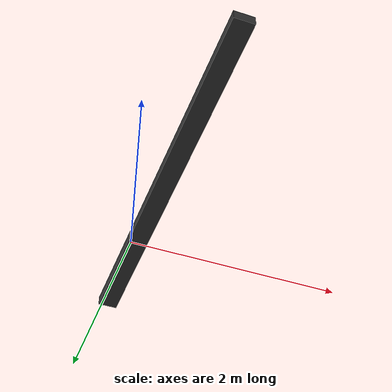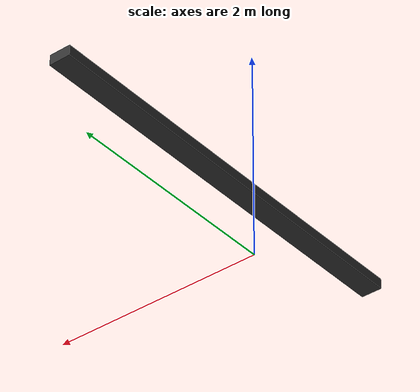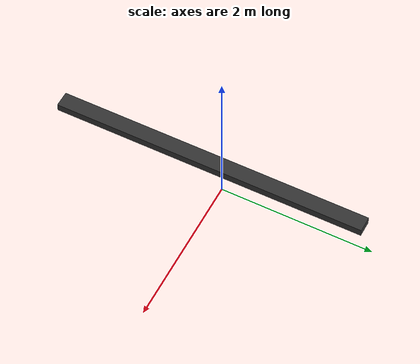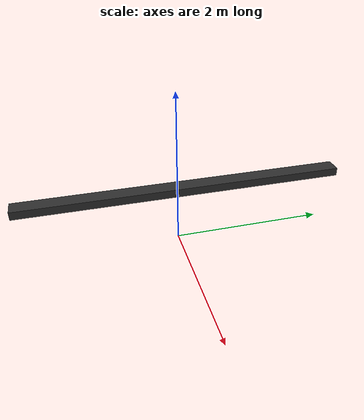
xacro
<?xml version="1.0"?>
<robot xmlns:xacro="http://www.ros.org/wiki/xacro"
       name="gear" >

  <!-- linear arm actuator -->
  <xacro:include filename="$(find osrf_gear)/launch/linear_arm_actuator/linear_arm_actuator.urdf.xacro" />

  <xacro:create_linear_arm_actuator base_link="arm_base_link" />

  <link name="arm_base_link" />
  <!-- world link -->
  <link name="world" />

  <joint name="world_joint" type="fixed">
    <parent link="world" />
    <child link="linear_arm_actuator" />
    <origin xyz="0.3 0.0 0.9" rpy="0.0 0.0 0.0" />
  </joint>

  <!-- sensor links and fixed joints -->
  <!-- a bin in the frame bin8_frame -->
  <link name="bin8_frame" />
  <joint name="bin8_joint" type="fixed">
    <parent link="world" />
    <child link="bin8_frame" />
    <origin xyz="-0.3 0.995 0.72" rpy="0 0 1.5708" />
  </joint>
  <!-- a bin in the frame bin5_frame -->
  <link name="bin5_frame" />
  <joint name="bin5_joint" type="fixed">
    <parent link="world" />
    <child link="bin5_frame" />
    <origin xyz="-0.3 -1.33 0.72" rpy="0 0 1.5708" />
  </joint>
  <!-- a bin in the frame bin4_frame -->
  <link name="bin4_frame" />
  <joint name="bin4_joint" type="fixed">
    <parent link="world" />
    <child link="bin4_frame" />
    <origin xyz="-1.0 0.995 0.72" rpy="0 0 1.5708" />
  </joint>
  <!-- a bin in the frame bin7_frame -->
  <link name="bin7_frame" />
  <joint name="bin7_joint" type="fixed">
    <parent link="world" />
    <child link="bin7_frame" />
    <origin xyz="-0.3 0.23 0.72" rpy="0 0 1.5708" />
  </joint>
  <!-- a bin in the frame bin6_frame -->
  <link name="bin6_frame" />
  <joint name="bin6_joint" type="fixed">
    <parent link="world" />
    <child link="bin6_frame" />
    <origin xyz="-0.3 -0.535 0.72" rpy="0 0 1.5708" />
  </joint>
  <!-- a bin in the frame bin1_frame -->
  <link name="bin1_frame" />
  <joint name="bin1_joint" type="fixed">
    <parent link="world" />
    <child link="bin1_frame" />
    <origin xyz="-1.0 -1.33 0.72" rpy="0 0 1.5708" />
  </joint>
  <!-- a bin in the frame bin3_frame -->
  <link name="bin3_frame" />
  <joint name="bin3_joint" type="fixed">
    <parent link="world" />
    <child link="bin3_frame" />
    <origin xyz="-1.0 0.23 0.72" rpy="0 0 1.5708" />
  </joint>
  <!-- a bin in the frame bin2_frame -->
  <link name="bin2_frame" />
  <joint name="bin2_joint" type="fixed">
    <parent link="world" />
    <child link="bin2_frame" />
    <origin xyz="-1.0 -0.535 0.72" rpy="0 0 1.5708" />
  </joint>
  <!-- agv load point frames -->
  <link name="agv1_load_point_frame" />
  <joint name="agv1_load_point_joint" type="fixed">
    <parent link="world" />
    <child link="agv1_load_point_frame" />
    <origin xyz="0.3 3.3 0.75" rpy="0 0 3.1415" />
  </joint>
  <link name="agv2_load_point_frame" />
  <joint name="agv2_load_point_joint" type="fixed">
    <parent link="world" />
    <child link="agv2_load_point_frame" />
    <origin xyz="0.3 -3.3 0.75" rpy="0 0 0" />
  </joint>
  <link name="belt_frame" />
  <joint name="belt_joint" type="fixed">
    <parent link="world" />
    <child link="belt_frame" />
    <origin xyz="1.24 0.15 0.91" rpy="0 0 0" />
  </joint>

  <!-- plugin to spawn gazebo scene data into the moveit scene -->

</robot>

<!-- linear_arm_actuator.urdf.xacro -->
<robot xmlns:xacro="http://www.ros.org/wiki/xacro">

<xacro:property name="base_len" value="0.2" />
<xacro:property name="actuator_len" value="4.0" />
<xacro:property name="actuator_height" value="0.1" />

<xacro:arg name="use_velocity_interface" default="false" />
<xacro:arg name="use_effort_interface" default="false" />

<xacro:macro name="create_linear_arm_actuator" params="base_link">

  <link name="linear_arm_actuator">
    <inertial>
      <origin xyz="0 0 0" rpy="0 0 0" />
      <inertia ixx="0.1" ixy="0" ixz="0"
               iyy="0.1" iyz="0"
               izz="0.1" />
      <mass value="1" />
    </inertial>

    <visual>
      <origin xyz="0 0 0" rpy="0 0 0" />
      <geometry>
        <box size="${base_len} ${actuator_len} ${actuator_height}" />
      </geometry>
      <material name="Grey">
        <color rgba="0.2 0.2 0.2 1.0"/>
      </material>
    </visual>

    <collision>
      <origin xyz="0 0 0" rpy="0 0 0" />
      <geometry>
        <box size="${base_len} ${actuator_len} ${actuator_height}" />
      </geometry>
    </collision>
  </link>

  <gazebo reference="linear_arm_actuator">
    <material>Gazebo/Grey</material>
  </gazebo>

  <joint name="linear_arm_actuator_joint" type="prismatic">
    <parent link="linear_arm_actuator" />
    <child link="${base_link}" />

    <axis xyz="0 1 0" />
    <limit lower="${-1 * ((actuator_len / 2) - base_len)}"
           upper="${(actuator_len / 2) - base_len}"
           effort="1000"
           velocity="1" />
    <origin xyz="0 0 ${base_len / 2}" rpy="0 0 0" />
    <dynamics damping="20.0" friction="500.0" />
  </joint>

  <gazebo reference="linear_arm_actuator_joint">
    <implicitSpringDamper>1</implicitSpringDamper>
  </gazebo>

  <xacro:linear_arm_actuator_transmission />

</xacro:macro>

<xacro:macro name="linear_arm_actuator_transmission">

  <!-- if use_position_interface create PositionJointInterface based transmissions -->
  <xacro:unless value="$(arg use_velocity_interface)">
  <xacro:unless value="$(arg use_effort_interface)">
    <xacro:linear_arm_actuator_transmission_impl joint_interface="PositionJointInterface" />
  </xacro:unless>
  </xacro:unless>
  <!-- if use_velocity_interface create VelocityJointInterface based transmissions -->
  <xacro:if value="$(arg use_velocity_interface)">
    <xacro:linear_arm_actuator_transmission_impl joint_interface="VelocityJointInterface" />
  </xacro:if>
  <!-- if use_effort_interface create EffortJointInterface based transmissions -->
  <xacro:if value="$(arg use_effort_interface)">
    <xacro:linear_arm_actuator_transmission_impl joint_interface="EffortJointInterface" />
  </xacro:if>

</xacro:macro>

<xacro:macro name="linear_arm_actuator_transmission_impl" params="joint_interface">

  <transmission name="linear_arm_actuator_trans">
    <type>transmission_interface/SimpleTransmission</type>
    <joint name="linear_arm_actuator_joint">
      <hardwareInterface>${joint_interface}</hardwareInterface>
    </joint>
    <actuator name="linear_arm_actuator_motor">
      <mechanicalReduction>1</mechanicalReduction>
    </actuator>
  </transmission>

</xacro:macro>

</robot>
